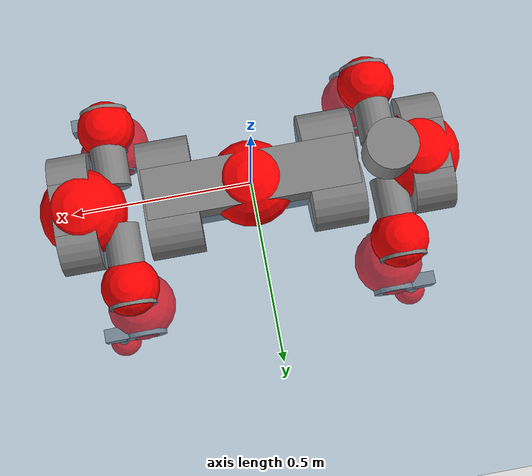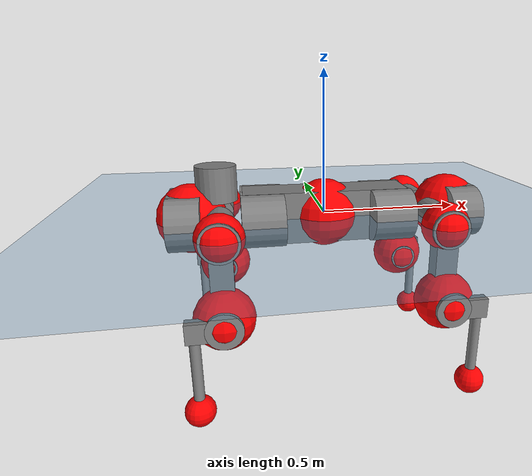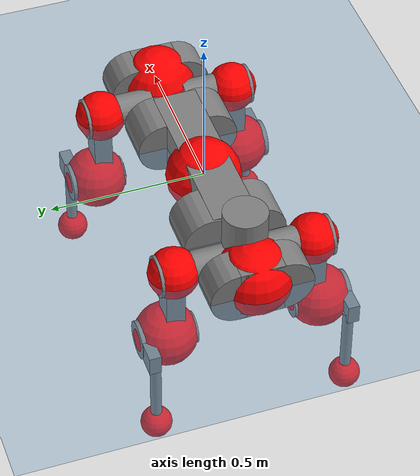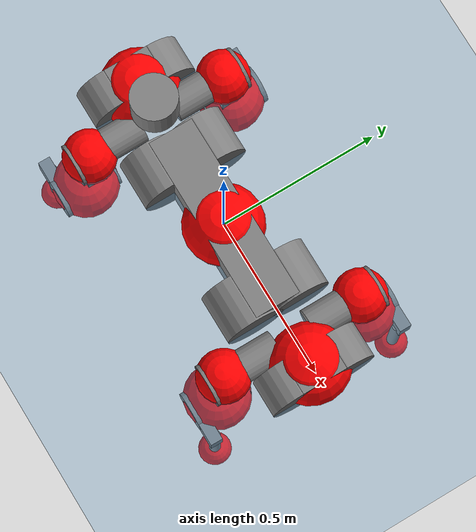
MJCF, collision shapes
<mujoco model="anymal_c">
  <compiler angle="radian" assetdir="assets" balanceinertia="true" inertiafromgeom="false"/>

  <option timestep="0.005" density="1.2" viscosity="2e-05"/>

  <size nkey="1"/>

  <visual>
    <quality shadowsize="8192"/>
    <map shadowclip="0.5"/>
  </visual>

  <default>
    <default class="/">
      <material specular="0" shininess="0.25"/>
      <geom contype="0" conaffinity="0" group="1" solref="-1000 -80"/>
      <site size="0.01 0.005 0.005" group="5"/>
      <general forcelimited="true" forcerange="-80 80" biastype="affine" gainprm="80" biasprm="0 -80 -2"/>
      <default class="anymal_c">
        <joint armature="0.01" damping="0.01" frictionloss="0.1"/>
        <default class="visual">
          <geom type="mesh" group="2"/>
          <default class="visual_zflip"/>
        </default>
        <default class="collision">
          <geom type="cylinder" group="3"/>
          <default class="foot">
            <geom size="0.03 0 0" type="sphere" condim="6" priority="1" friction="0.8 0.02 0.01" solimp="0.015 1 0.03"/>
          </default>
        </default>
      </default>
      <default class="reward_collision_sphere">
        <geom group="5" rgba="1 0 0 1"/>
      </default>
    </default>
  </default>

  <asset>
    <texture type="skybox" colorspace="auto" name="//unnamed_texture_0" builtin="gradient" rgb1="0.95 0.95 0.95" rgb2="0.95 0.95 0.95" width="100" height="600"/>
    <texture type="2d" colorspace="auto" name="texplane" builtin="checker" rgb1="0.345 0.575 0.748" rgb2="0.345 0.575 0.748" markrgb="1 1 1" width="512" height="512"/>
    <texture type="2d" colorspace="linear" name="base" file="base.png"/>
    <texture type="2d" colorspace="linear" name="top_shell" file="top_shell.png"/>
    <texture type="2d" colorspace="linear" name="bottom_shell" file="bottom_shell.png"/>
    <texture type="2d" colorspace="linear" name="remote" file="remote.png"/>
    <texture type="2d" colorspace="linear" name="hatch" file="hatch.png"/>
    <texture type="2d" colorspace="linear" name="handle" file="handle.png"/>
    <texture type="2d" colorspace="linear" name="face" file="face.png"/>
    <texture type="2d" colorspace="linear" name="battery" file="battery.png"/>
    <texture type="2d" colorspace="linear" name="lidar_cage" file="lidar_cage.png"/>
    <texture type="2d" colorspace="linear" name="depth_camera" file="depth_camera.png"/>
    <texture type="2d" colorspace="linear" name="wide_angle_camera" file="wide_angle_camera.png"/>
    <texture type="2d" colorspace="linear" name="lidar" file="lidar.png"/>
    <texture type="2d" colorspace="linear" name="drive" file="drive.png"/>
    <texture type="2d" colorspace="linear" name="hip_l" file="hip_l.png"/>
    <texture type="2d" colorspace="linear" name="shank_l" file="shank_l.png"/>
    <texture type="2d" colorspace="linear" name="foot" file="foot.png"/>
    <texture type="2d" colorspace="linear" name="thigh" file="thigh.png"/>
    <texture type="2d" colorspace="linear" name="shank_r" file="shank_r.png"/>
    <texture type="2d" colorspace="linear" name="hip_r" file="hip_r.png"/>
    <material name="MatPlane" class="/" texture="texplane" texuniform="true" texrepeat="2 2" specular="0.9" shininess="0.5"/>
    <material name="black_plastic" class="/" rgba="0.007 0.007 0.007 1"/>
    <material name="green" class="/" rgba="0.052 0.178 0.033 1"/>
    <material name="red" class="/" rgba="0.178 0.006 0.005 1"/>
    <material name="yellow" class="/" rgba="0.178 0.119 0.006 1"/>
    <material name="lwl" class="/" rgba="0.8 0.8 0.8 1"/>
    <material name="base" class="/" texture="base"/>
    <material name="top_shell" class="/" texture="top_shell"/>
    <material name="bottom_shell" class="/" texture="bottom_shell"/>
    <material name="hip_l" class="/" texture="hip_l"/>
    <material name="thigh" class="/" texture="thigh"/>
    <material name="shank_l" class="/" texture="shank_l"/>
    <material name="foot" class="/" texture="foot"/>
    <material name="hip_r" class="/" texture="hip_r"/>
    <material name="shank" class="/" texture="shank_r"/>
    <material name="hatch" class="/" texture="hatch"/>
    <material name="remote" class="/" texture="remote"/>
    <material name="handle" class="/" texture="handle"/>
    <material name="face" class="/" texture="face"/>
    <material name="depth_camera" class="/" texture="depth_camera"/>
    <material name="wide_angle_camera" class="/" texture="wide_angle_camera"/>
    <material name="battery" class="/" texture="battery"/>
    <material name="lidar_cage" class="/" texture="lidar_cage"/>
    <material name="lidar" class="/" texture="lidar"/>
    <material name="drive" class="/" texture="drive"/>
    <mesh name="base_0" class="/" file="base_0.obj"/>
    <mesh name="base_1" class="/" file="base_1.obj"/>
    <mesh name="base_2" class="/" file="base_2.obj"/>
    <mesh name="base_3" class="/" file="base_3.obj"/>
    <mesh name="base_4" class="/" file="base_4.obj"/>
    <mesh name="base_5" class="/" file="base_5.obj"/>
    <mesh name="top_shell" class="/" file="top_shell.obj"/>
    <mesh name="bottom_shell" class="/" file="bottom_shell.obj"/>
    <mesh name="remote" class="/" file="remote.obj"/>
    <mesh name="handle" class="/" file="handle.obj"/>
    <mesh name="face" class="/" file="face.obj"/>
    <mesh name="wide_angle_camera" class="/" file="wide_angle_camera.obj"/>
    <mesh name="depth_camera" class="/" file="depth_camera.obj"/>
    <mesh name="battery" class="/" file="battery.obj"/>
    <mesh name="lidar_cage" class="/" file="lidar_cage.obj"/>
    <mesh name="lidar" class="/" file="lidar.obj"/>
    <mesh name="drive" class="/" file="drive.obj"/>
    <mesh name="hip_l" class="/" file="hip_l.obj"/>
    <mesh name="thigh" class="/" file="thigh.obj"/>
    <mesh name="shank_l" class="/" file="shank_l.obj"/>
    <mesh name="foot" class="/" file="foot.obj"/>
    <mesh name="hip_r" class="/" file="hip_r.obj"/>
    <mesh name="hatch" class="/" file="hatch.obj"/>
    <mesh name="shank_r" class="/" file="shank_r.obj"/>
  </asset>

  <worldbody>
    <geom name="floor" class="/" size="100 100 0.125" type="plane" group="0" material="MatPlane"/>
    <light name="toplight_shadow" class="/" pos="0 0 5" dir="0.0990148 0.0990148 -0.990148" type="directional" ambient="0.04 0.04 0.04" diffuse="0.55 0.55 0.55" specular="0.12 0.12 0.12"/>
    <light name="toplight_fill" class="/" pos="0 0 5" dir="0.0990148 0.0990148 -0.990148" type="directional" castshadow="false" ambient="0.04 0.04 0.04" diffuse="0.3 0.3 0.3" specular="0.08 0.08 0.08"/>
    <body name="trunk" childclass="anymal_c" pos="0.000331895 -0.000239554 -4.66923e-05" quat="1 2.53095e-05 2.47283e-05 0.000104649">
      <inertial pos="0.00294885 -0.00307476 0.0453807" quat="0.500031 0.499743 0.500035 0.500191" mass="19.9729" diaginertia="0.756322 0.881438 0.142084"/>
      <joint name="//unnamed_joint_0" type="free" armature="0" damping="0" frictionloss="0"/>
      <geom name="//unnamed_geom_1" class="visual" material="green" mesh="base_0"/>
      <geom name="//unnamed_geom_2" class="visual" material="yellow" mesh="base_1"/>
      <geom name="//unnamed_geom_3" class="visual" material="red" mesh="base_2"/>
      <geom name="//unnamed_geom_4" class="visual" material="black_plastic" mesh="base_3"/>
      <geom name="//unnamed_geom_5" class="visual" material="lwl" mesh="base_4"/>
      <geom name="//unnamed_geom_6" class="visual" material="base" mesh="base_5"/>
      <geom name="trunk_1" class="collision" size="0.293942 0.0709514 0.0912232" type="box"/>
      <geom name="trunk_2" class="collision" size="0.0912232 0.0734854" pos="0.227001 0.0751876 0" quat="0.707107 0 0.707107 0"/>
      <geom name="trunk_3" class="collision" size="0.0912232 0.0734854" pos="-0.227001 0.0751876 0" quat="0.707107 0 0.707107 0"/>
      <geom name="trunk_4" class="collision" size="0.0912232 0.0734854" pos="0.227001 -0.0751876 0" quat="0.707107 0 0.707107 0"/>
      <geom name="trunk_5" class="collision" size="0.0912232 0.0734854" pos="-0.227001 -0.0751876 0" quat="0.707107 0 0.707107 0"/>
      <geom name="//unnamed_geom_12" class="visual" material="top_shell" mesh="top_shell"/>
      <geom name="//unnamed_geom_13" class="visual" material="bottom_shell" mesh="bottom_shell"/>
      <geom name="//unnamed_geom_14" class="visual" material="remote" mesh="remote"/>
      <geom name="//unnamed_geom_15" class="visual" material="handle" mesh="handle"/>
      <geom name="//unnamed_geom_16" class="visual" pos="0.432606 0 0" quat="1 0 0 0" material="face" mesh="face"/>
      <geom name="trunk_6" class="collision" size="0.0557475 0.0709514 0.0912232" pos="0.490009 0 0" type="box"/>
      <geom name="//unnamed_geom_18" class="collision" size="0.0912232 0.0557475" pos="0.490009 0.0751876 0" quat="0.707107 0 0.707107 0"/>
      <geom name="//unnamed_geom_19" class="collision" size="0.0912232 0.0557475" pos="0.490009 -0.0751876 0" quat="0.707107 0 0.707107 0"/>
      <geom name="//unnamed_geom_20" class="visual" pos="0.481811 0 -0.0260338" quat="0.965926 0 0.258819 0" material="depth_camera" mesh="depth_camera"/>
      <geom name="//unnamed_geom_21" class="visual" pos="0.535409 0 0.0138171" material="wide_angle_camera" mesh="wide_angle_camera"/>
      <geom name="//unnamed_geom_22" class="visual_zflip" pos="-0.432606 0 0" quat="0 0 0 1" material="face" mesh="face"/>
      <geom name="trunk_7" class="collision" size="0.0557475 0.0709514 0.0912232" pos="-0.490009 0 0" quat="0 0 0 1" type="box"/>
      <geom name="//unnamed_geom_24" class="collision" size="0.0912232 0.0557475" pos="-0.490009 -0.0751876 0" quat="0 -0.707107 0 0.707107"/>
      <geom name="//unnamed_geom_25" class="collision" size="0.0912232 0.0557475" pos="-0.490009 0.0751876 0" quat="0 -0.707107 0 0.707107"/>
      <geom name="//unnamed_geom_26" class="visual" pos="-0.481811 0 -0.0260338" quat="0 -0.258819 0 0.965926" material="depth_camera" mesh="depth_camera"/>
      <geom name="//unnamed_geom_27" class="visual_zflip" pos="-0.535409 0 0.0138171" quat="0 0 0 1" material="wide_angle_camera" mesh="wide_angle_camera"/>
      <geom name="//unnamed_geom_28" class="visual" material="battery" mesh="battery"/>
      <geom name="//unnamed_geom_29" class="visual" pos="0 0.0825206 0.02773" quat="0.683013 -0.183013 0.183013 0.683013" material="depth_camera" mesh="depth_camera"/>
      <geom name="//unnamed_geom_30" class="visual" pos="0 -0.0825206 0.02773" quat="0.683013 0.183013 0.183013 -0.683013" material="depth_camera" mesh="depth_camera"/>
      <geom name="//unnamed_geom_31" class="visual" pos="-0.3799 0 0.0678394" quat="1 0 0 0" material="lidar_cage" mesh="lidar_cage"/>
      <geom name="trunk_8" class="collision" size="0.0709514 0.0608155" pos="-0.3799 0 0.123218"/>
      <geom name="//unnamed_geom_33" class="visual" pos="-0.3799 1.19537e-05 0.131248" quat="0.707107 0 0 -0.707107" material="lidar" mesh="lidar"/>
      <geom name="//unnamed_geom_34" class="visual" pos="0.313 0.111654 2.60691e-09" quat="0.258819 0.965926 0 0" material="drive" mesh="drive"/>
      <geom name="//unnamed_geom_35" class="visual" pos="0.313 -0.111654 -2.60691e-09" quat="0.258819 -0.965926 0 0" material="drive" mesh="drive"/>
      <geom name="//unnamed_geom_36" class="visual" pos="-0.313 0.111654 -2.60691e-09" quat="0 0 0.965926 -0.258819" material="drive" mesh="drive"/>
      <geom name="//unnamed_geom_37" class="visual" pos="-0.313 -0.111654 2.60691e-09" quat="0 0 -0.965926 -0.258819" material="drive" mesh="drive"/>
      <geom name="//unnamed_geom_38" class="visual" pos="0.121067 0 0.0673779" quat="1 0 0 0" material="hatch" mesh="hatch"/>
      <geom name="//unnamed_geom_39" class="reward_collision_sphere" size="0.121631"/>
      <geom name="//unnamed_geom_40" class="reward_collision_sphere" size="0.121631" pos="0.469657 0 0"/>
      <geom name="//unnamed_geom_41" class="reward_collision_sphere" size="0.121631" pos="-0.469657 0 0"/>
      <site name="imu" pos="0.272128 0.00188237 0.0547156" size="0.0101359"/>
      <camera name="track" pos="0 -2.14822 0" quat="0.707107 0.707107 0 0" mode="trackcom"/>
      <camera name="ego_camera" pos="0.469657 0 -0.0369194" quat="-0.5 -0.5 0.5 0.5"/>
      <body name="LF_HIP" pos="0.313828 0.111085 0.00181423" quat="0.258619 0.965978 0.000175993 -0.0013614">
        <inertial pos="0.0608624 -0.0157505 -0.00918624" quat="-0.131194 0.703463 -0.139209 0.684507" mass="2.71158" diaginertia="0.00701277 0.00667288 0.00216649"/>
        <joint name="LF_HAA" pos="0 0 0" axis="0.999999 0.000901559 -0.0006619" range="-0.761838 0.489597" armature="0.0106544" damping="0.0156568" frictionloss="0.107989"/>
        <geom name="//unnamed_geom_42" class="visual" pos="0 0.000153352 -2.5188e-05" quat="0.258819 -0.965926 0 0" material="hip_l" mesh="hip_l"/>
        <geom name="//unnamed_geom_43" class="visual" pos="0.0625166 -0.076099 -0.042818" quat="0.183013 -0.683013 0.683013 0.183013" material="drive" mesh="drive"/>
        <geom name="//unnamed_geom_44" class="collision" size="0.0506796 0.0709514" pos="0.0625166 -0.0128461 -0.00637321" quat="-0.353553 -0.612372 0.612372 -0.353553"/>
        <body name="LF_THIGH" pos="0.0624439 -0.0805105 -0.0372143" quat="0.183259 -0.683001 0.682965 0.182987">
          <inertial pos="0.0326514 0.00095513 -0.228224" quat="0.99313 -0.0052165 -0.0806867 0.0845842" mass="3.38528" diaginertia="0.0370651 0.0434678 0.00301066"/>
          <joint name="LF_HFE" pos="0 0 0" axis="0.999961 -0.00537171 0.00694837" range="-3.15249 3.18189" armature="0.0113323" damping="0.00939289" frictionloss="0.107926"/>
          <geom name="//unnamed_geom_45" class="visual" pos="-0.000605364 -9.53912e-07 0" quat="0.707107 0 0 -0.707107" material="thigh" mesh="thigh"/>
          <geom name="//unnamed_geom_46" class="collision" size="0.0658835 0.0405437" pos="0.0417473 0 0" quat="0.5 0.5 -0.5 -0.5"/>
          <geom name="//unnamed_geom_47" class="collision" size="0.0380097 0.0304077 0.143235" pos="0.0313105 0 -0.130431" quat="0.707107 0 0 -0.707107" type="box"/>
          <geom name="//unnamed_geom_48" class="visual" pos="0.104681 0 -0.263051" quat="1 0 0 0" material="drive" mesh="drive"/>
          <geom name="//unnamed_geom_49" class="collision" size="0.0506796 0.0709514" pos="0.0316236 0 -0.263051" quat="0.707107 0 0.707107 0"/>
          <geom name="//unnamed_geom_50" class="reward_collision_sphere" size="0.0810873" pos="0.0260921 0 0"/>
          <body name="LF_SHANK" pos="0.102843 0.000235894 -0.263344" quat="0.999999 0.00107491 1.40756e-05 0.000780421">
            <inertial pos="0.00500223 -0.0658334 -0.0740568" quat="0.992845 -0.116864 -0.00216211 -0.0244214" mass="0.596267" diaginertia="0.0125526 0.0135786 0.000759148"/>
            <joint name="LF_KFE" pos="0 0 0" axis="0.999941 0.0108697 0.000743927" range="-3.10627 3.0957" armature="0.00913052" damping="0.000662463" frictionloss="0.101229"/>
            <geom name="//unnamed_geom_51" class="visual" pos="-0.000197396 -0.00105253 0" quat="0.707107 0 0 -0.707107" material="shank_l" mesh="shank_l"/>
            <geom name="LF_kfe_act" class="collision" size="0.0608155 0.0202718" pos="0.0208736 0 0" quat="0.5 0.5 -0.5 -0.5"/>
            <geom name="//unnamed_geom_53" class="collision" size="0.0582805 0.0342087 0.0192582" pos="0.0208736 -0.0617602 0" quat="0.5 0.5 -0.5 -0.5" type="box"/>
            <geom name="//unnamed_geom_54" class="visual" pos="0.0136201 -0.094807 -0.311941" quat="0.382683 0 0 -0.92388" material="foot" mesh="foot"/>
            <geom name="LF_calf" class="collision" size="0.0177379 0.143172" pos="0.0136201 -0.0944678 -0.155971" quat="0.707107 0 0 -0.707107"/>
            <geom name="LF_foot" class="foot" size="0.0290241" pos="0.0136201 -0.0944678 -0.291174" quat="0.707107 0 0 -0.707107"/>
            <geom name="//unnamed_geom_57" class="reward_collision_sphere" size="0.101359" pos="-0.0521841 0 0"/>
            <geom name="//unnamed_geom_58" class="reward_collision_sphere" size="0.0506796" pos="0.0136201 -0.0944678 -0.291174"/>
            <site name="LF_foot" class="foot" pos="0.0136201 -0.0944678 -0.291174" quat="0.707107 0 0 -0.707107" size="0.0101359"/>
          </body>
        </body>
      </body>
      <body name="RF_HIP" pos="0.315839 -0.112572 0.00033058" quat="0.258766 -0.96594 0.000293478 0.000470359">
        <inertial pos="0.0600673 0.0189653 -0.00995486" quat="0.133022 0.681352 0.129889 0.70795" mass="3.07016" diaginertia="0.00738626 0.0070659 0.00219952"/>
        <joint name="RF_HAA" pos="0 0 0" axis="0.999983 0.00493255 -0.00311066" stiffness="0.00576254" range="-0.5036 0.771524" armature="0.010458" damping="0.0225501" frictionloss="0.0977311"/>
        <geom name="//unnamed_geom_59" class="visual" pos="0 -0.000153351 -2.51879e-05" quat="0.258819 0.965926 0 0" material="hip_r" mesh="hip_r"/>
        <geom name="//unnamed_geom_60" class="visual" pos="0.0625166 0.076099 -0.042818" quat="0.183013 0.683013 0.683013 -0.183013" material="drive" mesh="drive"/>
        <geom name="//unnamed_geom_61" class="collision" size="0.0506796 0.0709514" pos="0.0625166 0.0128461 -0.00637321" quat="-0.353553 0.612372 0.612372 0.353553"/>
        <body name="RF_THIGH" pos="0.0587006 0.0790038 -0.0384581" quat="0.182372 0.682042 0.684198 -0.182845">
          <inertial pos="0.0319219 -0.00193645 -0.226624" quat="0.992936 -0.00489654 -0.0770121 0.0901247" mass="2.96609" diaginertia="0.0366996 0.0394526 0.00273617"/>
          <joint name="RF_HFE" pos="0 0 0" axis="0.999895 0.0106975 0.00977517" stiffness="0.00433517" range="-3.2266 3.19161" armature="0.00987473" damping="0.0138846" frictionloss="0.0886292"/>
          <geom name="//unnamed_geom_62" class="visual" pos="-0.000605364 -9.53912e-07 0" quat="0.707107 0 0 -0.707107" material="thigh" mesh="thigh"/>
          <geom name="//unnamed_geom_63" class="collision" size="0.0658835 0.0405437" pos="0.0417473 0 0" quat="0.5 0.5 0.5 0.5"/>
          <geom name="//unnamed_geom_64" class="collision" size="0.0380097 0.0304077 0.143235" pos="0.0313105 0 -0.130431" quat="0.707107 0 0 0.707107" type="box"/>
          <geom name="//unnamed_geom_65" class="visual" pos="0.104681 0 -0.263051" quat="1 0 0 0" material="drive" mesh="drive"/>
          <geom name="//unnamed_geom_66" class="collision" size="0.0506796 0.0709514" pos="0.0316236 0 -0.263051" quat="0.707107 0 0.707107 0"/>
          <geom name="//unnamed_geom_67" class="reward_collision_sphere" size="0.0810873" pos="0.0260921 0 0"/>
          <body name="RF_SHANK" pos="0.101672 0.00293348 -0.261598" quat="0.999999 -9.84352e-05 0.000515761 -0.000946132">
            <inertial pos="0.00347816 0.0633105 -0.0780998" quat="0.993107 0.116221 -0.0065328 0.0137389" mass="0.642244" diaginertia="0.0126429 0.0131472 0.000746699"/>
            <joint name="RF_KFE" pos="0 0 0" axis="0.999753 0.0211333 0.00687494" range="-3.08435 3.16481" armature="0.0100353" damping="0.0192105" frictionloss="0.123232"/>
            <geom name="//unnamed_geom_68" class="visual" pos="-0.000197395 0.00105252 0" quat="0.707107 0 0 0.707107" material="shank" mesh="shank_r"/>
            <geom name="RF_kfe_act" class="collision" size="0.0608155 0.0202718" pos="0.0208736 0 0" quat="0.5 0.5 0.5 0.5"/>
            <geom name="//unnamed_geom_70" class="collision" size="0.0582805 0.0342087 0.0192582" pos="0.0208736 0.0617602 0" quat="0.5 0.5 0.5 0.5" type="box"/>
            <geom name="//unnamed_geom_71" class="visual" pos="0.01362 0.094807 -0.311941" quat="0.382683 0 0 0.92388" material="foot" mesh="foot"/>
            <geom name="RF_calf" class="collision" size="0.0177379 0.143172" pos="0.0136201 0.0944678 -0.155971" quat="0.707107 0 0 0.707107"/>
            <geom name="RF_foot" class="foot" size="0.0308797" pos="0.0136201 0.0944678 -0.291174" quat="0.707107 0 0 0.707107"/>
            <geom name="//unnamed_geom_74" class="reward_collision_sphere" size="0.101359" pos="-0.0521841 0 0"/>
            <geom name="//unnamed_geom_75" class="reward_collision_sphere" size="0.0506796" pos="0.0136201 0.0944678 -0.291174"/>
            <site name="RF_foot" class="foot" pos="0.0136201 0.0944678 -0.291174" quat="0.707107 0 0 0.707107" size="0.0101359"/>
          </body>
        </body>
      </body>
      <body name="LH_HIP" pos="-0.314721 0.111487 0.00195225" quat="0.000552351 0.000112177 0.965944 -0.258749">
        <inertial pos="0.0574859 0.0178522 -0.00560649" quat="0.150381 0.691188 0.127105 0.695334" mass="3.05906" diaginertia="0.00747628 0.00707922 0.00214494"/>
        <joint name="LH_HAA" pos="0 0 0" axis="1 -0.000467112 8.70745e-05" stiffness="0.00228227" range="-0.444028 0.685427" armature="0.0101153" damping="0.00409353" frictionloss="0.109731"/>
        <geom name="//unnamed_geom_76" class="visual" pos="0 -0.000153351 -2.51879e-05" quat="-0.258819 -0.965926 0 0" material="hip_r" mesh="hip_r"/>
        <geom name="//unnamed_geom_77" class="visual" pos="0.0625166 0.076099 -0.042818" quat="0.183013 0.683013 0.683013 -0.183013" material="drive" mesh="drive"/>
        <geom name="//unnamed_geom_78" class="collision" size="0.0506796 0.0709514" pos="0.0625166 0.0128461 -0.00637321" quat="-0.353553 0.612372 0.612372 0.353553"/>
        <body name="LH_THIGH" pos="0.0624963 0.0793957 -0.0396993" quat="0.183386 0.683027 0.683098 -0.182266">
          <inertial pos="0.0297188 -0.000145839 -0.226661" quat="0.993446 0.00182201 -0.0821998 0.0794005" mass="3.12657" diaginertia="0.0351607 0.0405587 0.00276783"/>
          <joint name="LH_HFE" pos="0 0 0" axis="0.999999 -0.000555558 -0.0014026" stiffness="0.00607309" range="-3.14746 3.1244" armature="0.0101362" damping="0" frictionloss="0.103125"/>
          <geom name="//unnamed_geom_79" class="visual" pos="-0.000605364 -9.53912e-07 0" quat="0.707107 0 0 -0.707107" material="thigh" mesh="thigh"/>
          <geom name="//unnamed_geom_80" class="collision" size="0.0658835 0.0405437" pos="0.0417473 0 0" quat="0.5 0.5 -0.5 -0.5"/>
          <geom name="//unnamed_geom_81" class="collision" size="0.0380097 0.0304077 0.143235" pos="0.0313105 0 -0.130431" quat="0.707107 0 0 -0.707107" type="box"/>
          <geom name="//unnamed_geom_82" class="visual" pos="0.104681 0 -0.263051" quat="1 0 0 0" material="drive" mesh="drive"/>
          <geom name="//unnamed_geom_83" class="collision" size="0.0506796 0.0709514" pos="0.0316236 0 -0.263051" quat="0.707107 0 0.707107 0"/>
          <geom name="//unnamed_geom_84" class="reward_collision_sphere" size="0.0810873" pos="0.0260921 0 0"/>
          <body name="LH_SHANK" pos="0.104152 -0.00194644 -0.262298" quat="1 0.000369801 -7.87033e-05 0.000465575">
            <inertial pos="0.0050847 0.063181 -0.0747901" quat="0.992933 0.115975 -0.000960027 0.0251492" mass="0.589742" diaginertia="0.0114395 0.0120259 0.000661606"/>
            <joint name="LH_KFE" pos="0 0 0" axis="0.999996 0.00145715 0.00259063" range="-3.1422 3.23834" armature="0.0104913" damping="0.003862" frictionloss="0.110685"/>
            <geom name="//unnamed_geom_85" class="visual" pos="-0.000197395 0.00105252 0" quat="-0.707107 0 0 -0.707107" material="shank" mesh="shank_r"/>
            <geom name="LH_kfe_act" class="collision" size="0.0608155 0.0202718" pos="0.0208736 0 0" quat="0.5 0.5 -0.5 -0.5"/>
            <geom name="//unnamed_geom_87" class="collision" size="0.0582805 0.0342087 0.0192582" pos="0.0208736 0.0617602 0" quat="0.5 0.5 -0.5 -0.5" type="box"/>
            <geom name="//unnamed_geom_88" class="visual" pos="0.01362 0.094807 -0.311941" quat="-0.382683 0 0 -0.92388" material="foot" mesh="foot"/>
            <geom name="LH_calf" class="collision" size="0.0177379 0.143172" pos="0.0136201 0.0944678 -0.155971" quat="0.707107 0 0 -0.707107"/>
            <geom name="LH_foot" class="foot" size="0.034363" pos="0.0136201 0.0944678 -0.291174" quat="0.707107 0 0 -0.707107"/>
            <geom name="//unnamed_geom_91" class="reward_collision_sphere" size="0.101359" pos="-0.0521841 0 0"/>
            <geom name="//unnamed_geom_92" class="reward_collision_sphere" size="0.0506796" pos="0.0136201 0.0944678 -0.291174"/>
            <site name="LH_foot" class="foot" pos="0.0136201 0.0944678 -0.291174" quat="0.707107 0 0 -0.707107" size="0.0101359"/>
          </body>
        </body>
      </body>
      <body name="RH_HIP" pos="-0.311905 -0.112682 0.00265352" quat="0.000500201 0.000487198 -0.966044 -0.258378">
        <inertial pos="0.0616028 -0.0146755 -0.00984874" quat="-0.124367 0.700333 -0.152711 0.686109" mass="2.78175" diaginertia="0.00727777 0.00682571 0.0021804"/>
        <joint name="RH_HAA" pos="0 0 0" axis="0.999907 0.00943415 0.00982509" range="-0.689392 0.544783" armature="0.0111771" damping="0.00588384" frictionloss="0.10557"/>
        <geom name="//unnamed_geom_93" class="visual" pos="0 0.000153352 -2.5188e-05" quat="-0.258819 0.965926 0 0" material="hip_l" mesh="hip_l"/>
        <geom name="//unnamed_geom_94" class="visual" pos="0.0625166 -0.076099 -0.042818" quat="-0.183013 0.683013 -0.683013 -0.183013" material="drive" mesh="drive"/>
        <geom name="//unnamed_geom_95" class="collision" size="0.0506796 0.0709514" pos="0.0625166 -0.0128461 -0.00637321" quat="0.353553 0.612372 -0.612372 0.353553"/>
        <body name="RH_THIGH" pos="0.0604987 -0.0791637 -0.0352195" quat="-0.183184 0.683045 -0.682984 -0.182828">
          <inertial pos="0.0323319 -0.00449183 -0.22543" quat="0.993393 -0.00781215 -0.0780501 0.0837671" mass="3.39653" diaginertia="0.0393498 0.0454128 0.00291536"/>
          <joint name="RH_HFE" pos="0 0 0" axis="0.999995 0.00301715 0.00126601" range="-3.09617 3.19417" armature="0.0077414" damping="0.00398662" frictionloss="0.114386"/>
          <geom name="//unnamed_geom_96" class="visual" pos="-0.000605364 -9.53912e-07 0" quat="0.707107 0 0 -0.707107" material="thigh" mesh="thigh"/>
          <geom name="//unnamed_geom_97" class="collision" size="0.0658835 0.0405437" pos="0.0417473 0 0" quat="0.5 0.5 0.5 0.5"/>
          <geom name="//unnamed_geom_98" class="collision" size="0.0380097 0.0304077 0.143235" pos="0.0313105 0 -0.130431" quat="0.707107 0 0 0.707107" type="box"/>
          <geom name="//unnamed_geom_99" class="visual" pos="0.104681 0 -0.263051" quat="1 0 0 0" material="drive" mesh="drive"/>
          <geom name="//unnamed_geom_100" class="collision" size="0.0506796 0.0709514" pos="0.0316236 0 -0.263051" quat="0.707107 0 0.707107 0"/>
          <geom name="//unnamed_geom_101" class="reward_collision_sphere" size="0.0810873" pos="0.0260921 0 0"/>
          <body name="RH_SHANK" pos="0.107587 0.000604544 -0.259684" quat="1 7.90818e-05 -6.89542e-05 2.86991e-05">
            <inertial pos="0.00751062 -0.0648628 -0.0740431" quat="0.994272 -0.102186 -0.00985667 -0.0297413" mass="0.617152" diaginertia="0.0126694 0.0125071 0.000691806"/>
            <joint name="RH_KFE" pos="0 0 0" axis="0.999932 0.0039178 -0.0110064" range="-3.15581 3.09748" armature="0.0100311" damping="0.00895229" frictionloss="0.11129"/>
            <geom name="//unnamed_geom_102" class="visual" pos="-0.000197396 -0.00105253 0" quat="0.707107 0 0 -0.707107" material="shank_l" mesh="shank_l"/>
            <geom name="RH_kfe_act" class="collision" size="0.0608155 0.0202718" pos="0.0208736 0 0" quat="0.5 0.5 0.5 0.5"/>
            <geom name="//unnamed_geom_104" class="collision" size="0.0582805 0.0342087 0.0192582" pos="0.0208736 -0.0617602 0" quat="0.5 0.5 0.5 0.5" type="box"/>
            <geom name="//unnamed_geom_105" class="visual" pos="0.0136201 -0.094807 -0.311941" quat="0.382683 0 0 -0.92388" material="foot" mesh="foot"/>
            <geom name="RH_calf" class="collision" size="0.0177379 0.143172" pos="0.0136201 -0.0944678 -0.155971" quat="0.707107 0 0 0.707107"/>
            <geom name="RH_foot" class="foot" size="0.0354749" pos="0.0136201 -0.0944678 -0.291174" quat="0.707107 0 0 0.707107"/>
            <geom name="//unnamed_geom_108" class="reward_collision_sphere" size="0.101359" pos="-0.0521841 0 0"/>
            <geom name="//unnamed_geom_109" class="reward_collision_sphere" size="0.0506796" pos="0.0136201 -0.0944678 -0.291174"/>
            <site name="RH_foot" class="foot" pos="0.0136201 -0.0944678 -0.291174" quat="0.707107 0 0 0.707107" size="0.0101359"/>
          </body>
        </body>
      </body>
    </body>
  </worldbody>

  <contact>
    <pair class="/" geom1="floor" geom2="LF_foot" name="//unnamed_contact_0"/>
    <pair class="/" geom1="floor" geom2="RF_foot" name="//unnamed_contact_1"/>
    <pair class="/" geom1="floor" geom2="LH_foot" name="//unnamed_contact_2"/>
    <pair class="/" geom1="floor" geom2="RH_foot" name="//unnamed_contact_3"/>
  </contact>

  <actuator>
    <general name="LF_HAA" class="/" joint="LF_HAA" forcerange="-77.1949 77.1949" gainprm="75.749" biasprm="0 -75.749 -2.12276"/>
    <general name="LF_HFE" class="/" joint="LF_HFE" forcerange="-93.891 93.891" gainprm="75.749" biasprm="0 -75.749 -2.12276"/>
    <general name="LF_KFE" class="/" joint="LF_KFE" forcerange="-88.6507 88.6507" gainprm="75.749" biasprm="0 -75.749 -2.12276"/>
    <general name="RF_HAA" class="/" joint="RF_HAA" forcerange="-74.1262 74.1262" gainprm="75.749" biasprm="0 -75.749 -2.12276"/>
    <general name="RF_HFE" class="/" joint="RF_HFE" forcerange="-89.8174 89.8174" gainprm="75.749" biasprm="0 -75.749 -2.12276"/>
    <general name="RF_KFE" class="/" joint="RF_KFE" forcerange="-75.2344 75.2344" gainprm="75.749" biasprm="0 -75.749 -2.12276"/>
    <general name="LH_HAA" class="/" joint="LH_HAA" forcerange="-82.8068 82.8068" gainprm="75.749" biasprm="0 -75.749 -2.12276"/>
    <general name="LH_HFE" class="/" joint="LH_HFE" forcerange="-80.3807 80.3807" gainprm="75.749" biasprm="0 -75.749 -2.12276"/>
    <general name="LH_KFE" class="/" joint="LH_KFE" forcerange="-76.4356 76.4356" gainprm="75.749" biasprm="0 -75.749 -2.12276"/>
    <general name="RH_HAA" class="/" joint="RH_HAA" forcerange="-93.2438 93.2438" gainprm="75.749" biasprm="0 -75.749 -2.12276"/>
    <general name="RH_HFE" class="/" joint="RH_HFE" forcerange="-75.2376 75.2376" gainprm="75.749" biasprm="0 -75.749 -2.12276"/>
    <general name="RH_KFE" class="/" joint="RH_KFE" forcerange="-74.1086 74.1086" gainprm="75.749" biasprm="0 -75.749 -2.12276"/>
  </actuator>

  <sensor>
    <gyro site="imu" name="imu_angular_velocity"/>
    <velocimeter site="imu" name="imu_linear_velocity"/>
    <framelinvel objtype="site" objname="LF_foot" name="LF_foot_global_linear_velocity"/>
    <framelinvel objtype="site" objname="RF_foot" name="RF_foot_global_linear_velocity"/>
    <framelinvel objtype="site" objname="LH_foot" name="LH_foot_global_linear_velocity"/>
    <framelinvel objtype="site" objname="RH_foot" name="RH_foot_global_linear_velocity"/>
  </sensor>

  <keyframe>
    <key name="home" qpos="0 0 0.55 1 0 0 0 0 0.4 -0.8 0 -0.4 0.8 0 -0.4 0.8 0 0.4 -0.8"/>
  </keyframe>
</mujoco>
